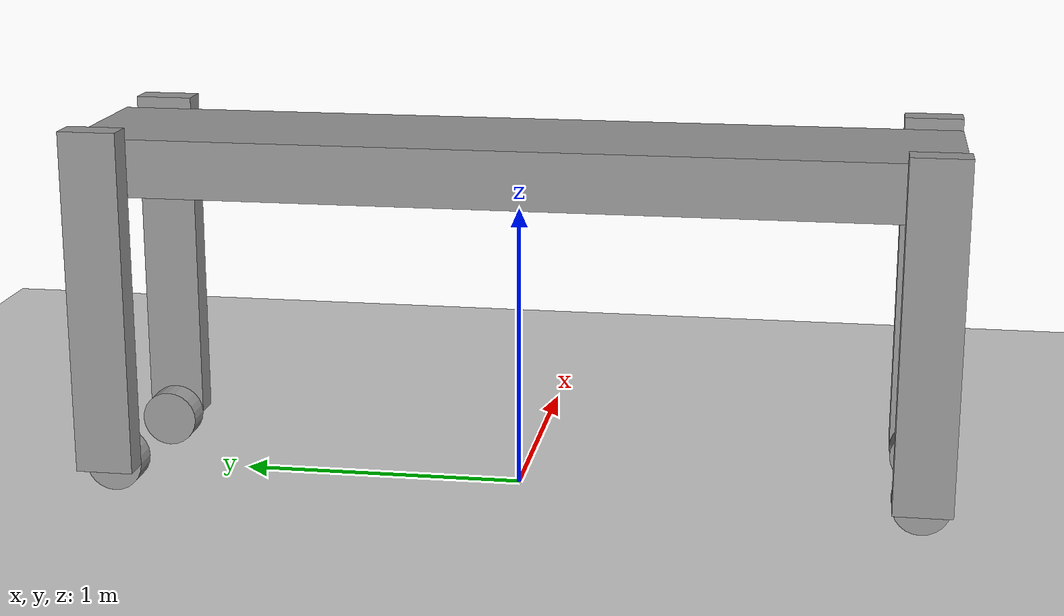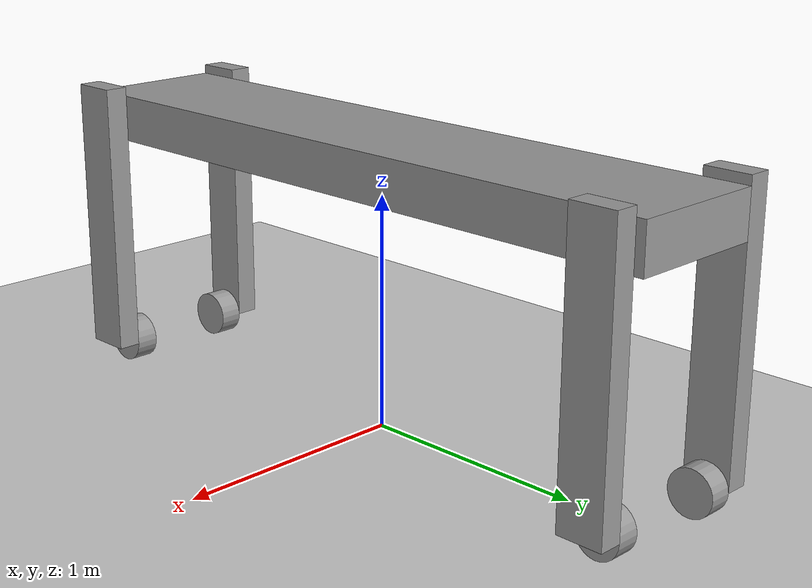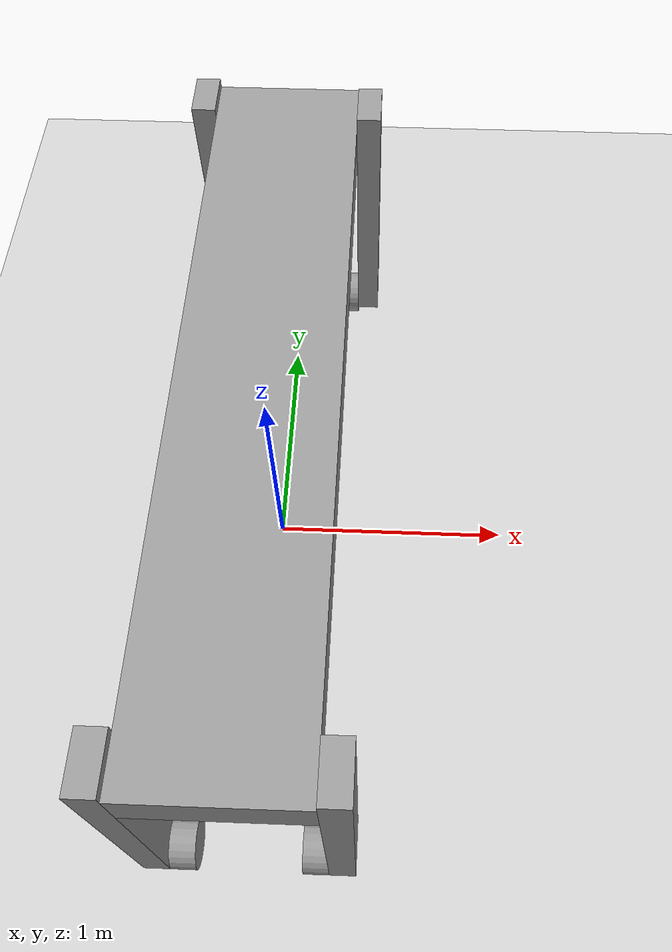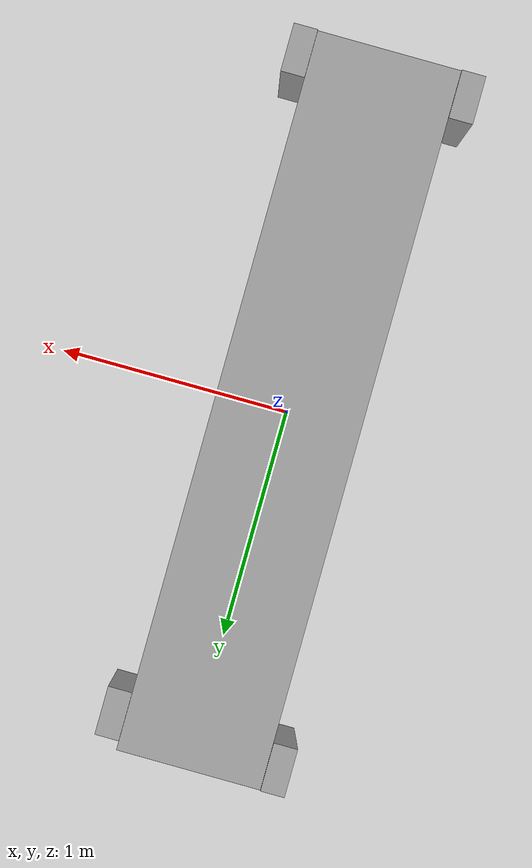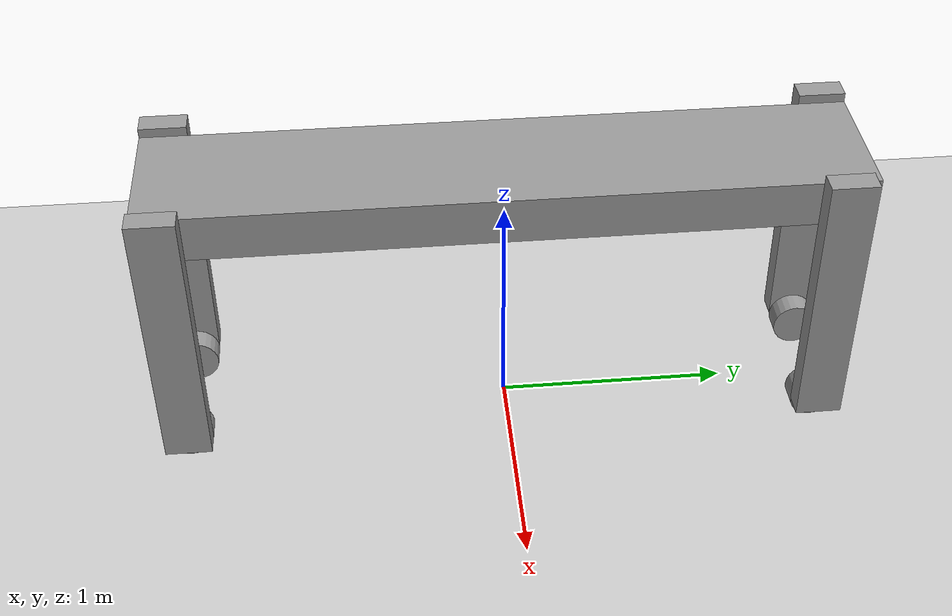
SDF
<sdf version="1.7">
 <world name="default">
  <model name="ground_plane">
   <static>1</static>
   <link name="link">
    <collision name="collision">
     <geometry><plane><normal>0 0 1</normal><size>100 100</size></plane></geometry>
     <surface>
      <contact><collide_bitmask>65535</collide_bitmask></contact>
      <friction><ode><mu>100</mu><mu2>50</mu2></ode></friction>
     </surface>
    </collision>
    <visual name="visual">
     <cast_shadows>0</cast_shadows>
     <geometry><plane><normal>0 0 1</normal><size>100 100</size></plane></geometry>
     <material>
      <script><uri>file://media/materials/scripts/gazebo.material</uri><name>Gazebo/Grey</name></script>
     </material>
    </visual>
   </link>
  </model>
  <model name="trolley_3m_long">
   <link name="link_0">
    <inertial>
     <mass>1</mass>
     <inertia>
      <ixx>0.166667</ixx>
      <ixy>0</ixy>
      <ixz>0</ixz>
      <iyy>0.166667</iyy>
      <iyz>0</iyz>
      <izz>0.166667</izz>
     </inertia>
    </inertial>
    <pose>0.010003 0.008889 0.52196 0 -0 0</pose>
    <visual name="visual">
     <geometry><box><size>0.6 3 0.2</size></box></geometry>
     <material>
      <lighting>1</lighting>
      <script><uri>file://media/materials/scripts/gazebo.material</uri><name>Gazebo/Grey</name></script>
      <shader type="pixel"><normal_map>__default__</normal_map></shader>
      <ambient>0.3 0.3 0.3 1</ambient>
      <diffuse>0.7 0.7 0.7 1</diffuse>
      <specular>0.01 0.01 0.01 1</specular>
      <emissive>0 0 0 1</emissive>
     </material>
    </visual>
    <collision name="collision">
     <geometry><box><size>0.6 3 0.2</size></box></geometry>
     <surface>
      <friction>
       <ode><mu>1</mu><mu2>1</mu2><fdir1>0 0 0</fdir1><slip1>0</slip1><slip2>0</slip2></ode>
       <torsional>
        <coefficient>1</coefficient>
        <patch_radius>0</patch_radius>
        <surface_radius>0</surface_radius>
        <use_patch_radius>1</use_patch_radius>
        <ode><slip>0</slip></ode>
       </torsional>
      </friction>
      <bounce><restitution_coefficient>0</restitution_coefficient><threshold>1e+06</threshold></bounce>
      <contact>
       <collide_without_contact>0</collide_without_contact>
       <collide_without_contact_bitmask>1</collide_without_contact_bitmask>
       <collide_bitmask>1</collide_bitmask>
       <ode>
        <soft_cfm>0</soft_cfm>
        <soft_erp>0.2</soft_erp>
        <kp>1e+13</kp>
        <kd>1</kd>
        <max_vel>0.01</max_vel>
        <min_depth>0</min_depth>
       </ode>
       <bullet>
        <split_impulse>1</split_impulse>
        <split_impulse_penetration_threshold>-0.01</split_impulse_penetration_threshold>
        <soft_cfm>0</soft_cfm>
        <soft_erp>0.2</soft_erp>
        <kp>1e+13</kp>
        <kd>1</kd>
       </bullet>
      </contact>
     </surface>
    </collision>
   </link>
   <link name="link_1">
    <inertial>
     <mass>1</mass>
     <inertia>
      <ixx>0.166667</ixx>
      <ixy>0</ixy>
      <ixz>0</ixz>
      <iyy>0.166667</iyy>
      <iyz>0</iyz>
      <izz>0.166667</izz>
     </inertia>
    </inertial>
    <pose>0.360003 1.36889 0.06196 0 -0 0</pose>
    <visual name="visual">
     <geometry><box><size>0.1 0.2 1.2</size></box></geometry>
     <material>
      <lighting>1</lighting>
      <script><uri>file://media/materials/scripts/gazebo.material</uri><name>Gazebo/Grey</name></script>
      <shader type="pixel"><normal_map>__default__</normal_map></shader>
      <ambient>0.3 0.3 0.3 1</ambient>
      <diffuse>0.7 0.7 0.7 1</diffuse>
      <specular>0.01 0.01 0.01 1</specular>
      <emissive>0 0 0 1</emissive>
     </material>
    </visual>
    <collision name="collision">
     <geometry><box><size>0.1 0.2 1.2</size></box></geometry>
     <surface>
      <friction>
       <ode><mu>1</mu><mu2>1</mu2><fdir1>0 0 0</fdir1><slip1>0</slip1><slip2>0</slip2></ode>
       <torsional>
        <coefficient>1</coefficient>
        <patch_radius>0</patch_radius>
        <surface_radius>0</surface_radius>
        <use_patch_radius>1</use_patch_radius>
        <ode><slip>0</slip></ode>
       </torsional>
      </friction>
      <bounce><restitution_coefficient>0</restitution_coefficient><threshold>1e+06</threshold></bounce>
      <contact>
       <collide_without_contact>0</collide_without_contact>
       <collide_without_contact_bitmask>1</collide_without_contact_bitmask>
       <collide_bitmask>1</collide_bitmask>
       <ode>
        <soft_cfm>0</soft_cfm>
        <soft_erp>0.2</soft_erp>
        <kp>1e+13</kp>
        <kd>1</kd>
        <max_vel>0.01</max_vel>
        <min_depth>0</min_depth>
       </ode>
       <bullet>
        <split_impulse>1</split_impulse>
        <split_impulse_penetration_threshold>-0.01</split_impulse_penetration_threshold>
        <soft_cfm>0</soft_cfm>
        <soft_erp>0.2</soft_erp>
        <kp>1e+13</kp>
        <kd>1</kd>
       </bullet>
      </contact>
     </surface>
    </collision>
   </link>
   <link name="link_1_clone">
    <inertial>
     <mass>1</mass>
     <inertia>
      <ixx>0.166667</ixx>
      <ixy>0</ixy>
      <ixz>0</ixz>
      <iyy>0.166667</iyy>
      <iyz>0</iyz>
      <izz>0.166667</izz>
     </inertia>
    </inertial>
    <pose>-0.339997 1.40889 0.06196 0 -0 0</pose>
    <visual name="visual">
     <geometry><box><size>0.1 0.2 1.2</size></box></geometry>
     <material>
      <lighting>1</lighting>
      <script><uri>file://media/materials/scripts/gazebo.material</uri><name>Gazebo/Grey</name></script>
      <shader type="pixel"><normal_map>__default__</normal_map></shader>
      <ambient>0.3 0.3 0.3 1</ambient>
      <diffuse>0.7 0.7 0.7 1</diffuse>
      <specular>0.01 0.01 0.01 1</specular>
      <emissive>0 0 0 1</emissive>
     </material>
    </visual>
    <collision name="collision">
     <geometry><box><size>0.1 0.2 1.2</size></box></geometry>
     <surface>
      <friction>
       <ode><mu>1</mu><mu2>1</mu2><fdir1>0 0 0</fdir1><slip1>0</slip1><slip2>0</slip2></ode>
       <torsional>
        <coefficient>1</coefficient>
        <patch_radius>0</patch_radius>
        <surface_radius>0</surface_radius>
        <use_patch_radius>1</use_patch_radius>
        <ode><slip>0</slip></ode>
       </torsional>
      </friction>
      <bounce><restitution_coefficient>0</restitution_coefficient><threshold>1e+06</threshold></bounce>
      <contact>
       <collide_without_contact>0</collide_without_contact>
       <collide_without_contact_bitmask>1</collide_without_contact_bitmask>
       <collide_bitmask>1</collide_bitmask>
       <ode>
        <soft_cfm>0</soft_cfm>
        <soft_erp>0.2</soft_erp>
        <kp>1e+13</kp>
        <kd>1</kd>
        <max_vel>0.01</max_vel>
        <min_depth>0</min_depth>
       </ode>
       <bullet>
        <split_impulse>1</split_impulse>
        <split_impulse_penetration_threshold>-0.01</split_impulse_penetration_threshold>
        <soft_cfm>0</soft_cfm>
        <soft_erp>0.2</soft_erp>
        <kp>1e+13</kp>
        <kd>1</kd>
       </bullet>
      </contact>
     </surface>
    </collision>
   </link>
   <link name="link_1_clone_0">
    <inertial>
     <mass>1</mass>
     <inertia>
      <ixx>0.166667</ixx>
      <ixy>0</ixy>
      <ixz>0</ixz>
      <iyy>0.166667</iyy>
      <iyz>0</iyz>
      <izz>0.166667</izz>
     </inertia>
    </inertial>
    <pose>0.360003 -1.39111 0.06196 0 -0 0</pose>
    <visual name="visual">
     <geometry><box><size>0.1 0.2 1.2</size></box></geometry>
     <material>
      <lighting>1</lighting>
      <script><uri>file://media/materials/scripts/gazebo.material</uri><name>Gazebo/Grey</name></script>
      <shader type="pixel"><normal_map>__default__</normal_map></shader>
      <ambient>0.3 0.3 0.3 1</ambient>
      <diffuse>0.7 0.7 0.7 1</diffuse>
      <specular>0.01 0.01 0.01 1</specular>
      <emissive>0 0 0 1</emissive>
     </material>
    </visual>
    <collision name="collision">
     <geometry><box><size>0.1 0.2 1.2</size></box></geometry>
     <surface>
      <friction>
       <ode><mu>1</mu><mu2>1</mu2><fdir1>0 0 0</fdir1><slip1>0</slip1><slip2>0</slip2></ode>
       <torsional>
        <coefficient>1</coefficient>
        <patch_radius>0</patch_radius>
        <surface_radius>0</surface_radius>
        <use_patch_radius>1</use_patch_radius>
        <ode><slip>0</slip></ode>
       </torsional>
      </friction>
      <bounce><restitution_coefficient>0</restitution_coefficient><threshold>1e+06</threshold></bounce>
      <contact>
       <collide_without_contact>0</collide_without_contact>
       <collide_without_contact_bitmask>1</collide_without_contact_bitmask>
       <collide_bitmask>1</collide_bitmask>
       <ode>
        <soft_cfm>0</soft_cfm>
        <soft_erp>0.2</soft_erp>
        <kp>1e+13</kp>
        <kd>1</kd>
        <max_vel>0.01</max_vel>
        <min_depth>0</min_depth>
       </ode>
       <bullet>
        <split_impulse>1</split_impulse>
        <split_impulse_penetration_threshold>-0.01</split_impulse_penetration_threshold>
        <soft_cfm>0</soft_cfm>
        <soft_erp>0.2</soft_erp>
        <kp>1e+13</kp>
        <kd>1</kd>
       </bullet>
      </contact>
     </surface>
    </collision>
   </link>
   <link name="link_1_clone_1">
    <inertial>
     <mass>1</mass>
     <inertia>
      <ixx>0.166667</ixx>
      <ixy>0</ixy>
      <ixz>0</ixz>
      <iyy>0.166667</iyy>
      <iyz>0</iyz>
      <izz>0.166667</izz>
     </inertia>
    </inertial>
    <pose>-0.339997 -1.39111 0.06196 0 -0 0</pose>
    <visual name="visual">
     <geometry><box><size>0.1 0.2 1.2</size></box></geometry>
     <material>
      <lighting>1</lighting>
      <script><uri>file://media/materials/scripts/gazebo.material</uri><name>Gazebo/Grey</name></script>
      <shader type="pixel"><normal_map>__default__</normal_map></shader>
      <ambient>0.3 0.3 0.3 1</ambient>
      <diffuse>0.7 0.7 0.7 1</diffuse>
      <specular>0.01 0.01 0.01 1</specular>
      <emissive>0 0 0 1</emissive>
     </material>
    </visual>
    <collision name="collision">
     <geometry><box><size>0.1 0.2 1.2</size></box></geometry>
     <surface>
      <friction>
       <ode><mu>1</mu><mu2>1</mu2><fdir1>0 0 0</fdir1><slip1>0</slip1><slip2>0</slip2></ode>
       <torsional>
        <coefficient>1</coefficient>
        <patch_radius>0</patch_radius>
        <surface_radius>0</surface_radius>
        <use_patch_radius>1</use_patch_radius>
        <ode><slip>0</slip></ode>
       </torsional>
      </friction>
      <bounce><restitution_coefficient>0</restitution_coefficient><threshold>1e+06</threshold></bounce>
      <contact>
       <collide_without_contact>0</collide_without_contact>
       <collide_without_contact_bitmask>1</collide_without_contact_bitmask>
       <collide_bitmask>1</collide_bitmask>
       <ode>
        <soft_cfm>0</soft_cfm>
        <soft_erp>0.2</soft_erp>
        <kp>1e+13</kp>
        <kd>1</kd>
        <max_vel>0.01</max_vel>
        <min_depth>0</min_depth>
       </ode>
       <bullet>
        <split_impulse>1</split_impulse>
        <split_impulse_penetration_threshold>-0.01</split_impulse_penetration_threshold>
        <soft_cfm>0</soft_cfm>
        <soft_erp>0.2</soft_erp>
        <kp>1e+13</kp>
        <kd>1</kd>
       </bullet>
      </contact>
     </surface>
    </collision>
   </link>
   <link name="link_2">
    <inertial>
     <mass>1</mass>
     <inertia><ixx>0.145833</ixx><ixy>0</ixy><ixz>0</ixz><iyy>0.145833</iyy><iyz>0</iyz><izz>0.125</izz></inertia>
    </inertial>
    <pose>0.260003 1.36889 -0.53804 0 1.57 0</pose>
    <visual name="visual">
     <geometry><cylinder><radius>0.1</radius><length>0.1</length></cylinder></geometry>
     <material>
      <lighting>1</lighting>
      <script><uri>file://media/materials/scripts/gazebo.material</uri><name>Gazebo/Grey</name></script>
      <shader type="pixel"><normal_map>__default__</normal_map></shader>
      <ambient>0.3 0.3 0.3 1</ambient>
      <diffuse>0.7 0.7 0.7 1</diffuse>
      <specular>0.01 0.01 0.01 1</specular>
      <emissive>0 0 0 1</emissive>
     </material>
    </visual>
    <collision name="collision">
     <geometry><cylinder><radius>0.1</radius><length>0.1</length></cylinder></geometry>
     <surface>
      <friction>
       <ode><mu>1</mu><mu2>1</mu2><fdir1>0 0 0</fdir1><slip1>0</slip1><slip2>0</slip2></ode>
       <torsional>
        <coefficient>1</coefficient>
        <patch_radius>0</patch_radius>
        <surface_radius>0</surface_radius>
        <use_patch_radius>1</use_patch_radius>
        <ode><slip>0</slip></ode>
       </torsional>
      </friction>
      <bounce><restitution_coefficient>0</restitution_coefficient><threshold>1e+06</threshold></bounce>
      <contact>
       <collide_without_contact>0</collide_without_contact>
       <collide_without_contact_bitmask>1</collide_without_contact_bitmask>
       <collide_bitmask>1</collide_bitmask>
       <ode>
        <soft_cfm>0</soft_cfm>
        <soft_erp>0.2</soft_erp>
        <kp>1e+13</kp>
        <kd>1</kd>
        <max_vel>0.01</max_vel>
        <min_depth>0</min_depth>
       </ode>
       <bullet>
        <split_impulse>1</split_impulse>
        <split_impulse_penetration_threshold>-0.01</split_impulse_penetration_threshold>
        <soft_cfm>0</soft_cfm>
        <soft_erp>0.2</soft_erp>
        <kp>1e+13</kp>
        <kd>1</kd>
       </bullet>
      </contact>
     </surface>
    </collision>
   </link>
   <link name="link_2_clone">
    <inertial>
     <mass>1</mass>
     <inertia><ixx>0.145833</ixx><ixy>0</ixy><ixz>0</ixz><iyy>0.145833</iyy><iyz>0</iyz><izz>0.125</izz></inertia>
    </inertial>
    <pose>-0.239917 1.40889 -0.53804 0 1.57 0</pose>
    <visual name="visual">
     <geometry><cylinder><radius>0.1</radius><length>0.1</length></cylinder></geometry>
     <material>
      <lighting>1</lighting>
      <script><uri>file://media/materials/scripts/gazebo.material</uri><name>Gazebo/Grey</name></script>
      <shader type="pixel"><normal_map>__default__</normal_map></shader>
      <ambient>0.3 0.3 0.3 1</ambient>
      <diffuse>0.7 0.7 0.7 1</diffuse>
      <specular>0.01 0.01 0.01 1</specular>
      <emissive>0 0 0 1</emissive>
     </material>
    </visual>
    <collision name="collision">
     <geometry><cylinder><radius>0.1</radius><length>0.1</length></cylinder></geometry>
     <surface>
      <friction>
       <ode><mu>1</mu><mu2>1</mu2><fdir1>0 0 0</fdir1><slip1>0</slip1><slip2>0</slip2></ode>
       <torsional>
        <coefficient>1</coefficient>
        <patch_radius>0</patch_radius>
        <surface_radius>0</surface_radius>
        <use_patch_radius>1</use_patch_radius>
        <ode><slip>0</slip></ode>
       </torsional>
      </friction>
      <bounce><restitution_coefficient>0</restitution_coefficient><threshold>1e+06</threshold></bounce>
      <contact>
       <collide_without_contact>0</collide_without_contact>
       <collide_without_contact_bitmask>1</collide_without_contact_bitmask>
       <collide_bitmask>1</collide_bitmask>
       <ode>
        <soft_cfm>0</soft_cfm>
        <soft_erp>0.2</soft_erp>
        <kp>1e+13</kp>
        <kd>1</kd>
        <max_vel>0.01</max_vel>
        <min_depth>0</min_depth>
       </ode>
       <bullet>
        <split_impulse>1</split_impulse>
        <split_impulse_penetration_threshold>-0.01</split_impulse_penetration_threshold>
        <soft_cfm>0</soft_cfm>
        <soft_erp>0.2</soft_erp>
        <kp>1e+13</kp>
        <kd>1</kd>
       </bullet>
      </contact>
     </surface>
    </collision>
   </link>
   <link name="link_2_clone_0">
    <inertial>
     <mass>1</mass>
     <inertia><ixx>0.145833</ixx><ixy>0</ixy><ixz>0</ixz><iyy>0.145833</iyy><iyz>0</iyz><izz>0.125</izz></inertia>
    </inertial>
    <pose>0.259923 -1.39111 -0.53804 0 1.57 0</pose>
    <visual name="visual">
     <geometry><cylinder><radius>0.1</radius><length>0.1</length></cylinder></geometry>
     <material>
      <lighting>1</lighting>
      <script><uri>file://media/materials/scripts/gazebo.material</uri><name>Gazebo/Grey</name></script>
      <shader type="pixel"><normal_map>__default__</normal_map></shader>
      <ambient>0.3 0.3 0.3 1</ambient>
      <diffuse>0.7 0.7 0.7 1</diffuse>
      <specular>0.01 0.01 0.01 1</specular>
      <emissive>0 0 0 1</emissive>
     </material>
    </visual>
    <collision name="collision">
     <geometry><cylinder><radius>0.1</radius><length>0.1</length></cylinder></geometry>
     <surface>
      <friction>
       <ode><mu>1</mu><mu2>1</mu2><fdir1>0 0 0</fdir1><slip1>0</slip1><slip2>0</slip2></ode>
       <torsional>
        <coefficient>1</coefficient>
        <patch_radius>0</patch_radius>
        <surface_radius>0</surface_radius>
        <use_patch_radius>1</use_patch_radius>
        <ode><slip>0</slip></ode>
       </torsional>
      </friction>
      <bounce><restitution_coefficient>0</restitution_coefficient><threshold>1e+06</threshold></bounce>
      <contact>
       <collide_without_contact>0</collide_without_contact>
       <collide_without_contact_bitmask>1</collide_without_contact_bitmask>
       <collide_bitmask>1</collide_bitmask>
       <ode>
        <soft_cfm>0</soft_cfm>
        <soft_erp>0.2</soft_erp>
        <kp>1e+13</kp>
        <kd>1</kd>
        <max_vel>0.01</max_vel>
        <min_depth>0</min_depth>
       </ode>
       <bullet>
        <split_impulse>1</split_impulse>
        <split_impulse_penetration_threshold>-0.01</split_impulse_penetration_threshold>
        <soft_cfm>0</soft_cfm>
        <soft_erp>0.2</soft_erp>
        <kp>1e+13</kp>
        <kd>1</kd>
       </bullet>
      </contact>
     </surface>
    </collision>
   </link>
   <link name="link_2_clone_1">
    <inertial>
     <mass>1</mass>
     <inertia><ixx>0.145833</ixx><ixy>0</ixy><ixz>0</ixz><iyy>0.145833</iyy><iyz>0</iyz><izz>0.125</izz></inertia>
    </inertial>
    <pose>-0.239917 -1.39111 -0.53804 0 1.57 0</pose>
    <visual name="visual">
     <geometry><cylinder><radius>0.1</radius><length>0.1</length></cylinder></geometry>
     <material>
      <lighting>1</lighting>
      <script><uri>file://media/materials/scripts/gazebo.material</uri><name>Gazebo/Grey</name></script>
      <shader type="pixel"><normal_map>__default__</normal_map></shader>
      <ambient>0.3 0.3 0.3 1</ambient>
      <diffuse>0.7 0.7 0.7 1</diffuse>
      <specular>0.01 0.01 0.01 1</specular>
      <emissive>0 0 0 1</emissive>
     </material>
    </visual>
    <collision name="collision">
     <geometry><cylinder><radius>0.1</radius><length>0.1</length></cylinder></geometry>
     <surface>
      <friction>
       <ode><mu>1</mu><mu2>1</mu2><fdir1>0 0 0</fdir1><slip1>0</slip1><slip2>0</slip2></ode>
       <torsional>
        <coefficient>1</coefficient>
        <patch_radius>0</patch_radius>
        <surface_radius>0</surface_radius>
        <use_patch_radius>1</use_patch_radius>
        <ode><slip>0</slip></ode>
       </torsional>
      </friction>
      <bounce><restitution_coefficient>0</restitution_coefficient><threshold>1e+06</threshold></bounce>
      <contact>
       <collide_without_contact>0</collide_without_contact>
       <collide_without_contact_bitmask>1</collide_without_contact_bitmask>
       <collide_bitmask>1</collide_bitmask>
       <ode>
        <soft_cfm>0</soft_cfm>
        <soft_erp>0.2</soft_erp>
        <kp>1e+13</kp>
        <kd>1</kd>
        <max_vel>0.01</max_vel>
        <min_depth>0</min_depth>
       </ode>
       <bullet>
        <split_impulse>1</split_impulse>
        <split_impulse_penetration_threshold>-0.01</split_impulse_penetration_threshold>
        <soft_cfm>0</soft_cfm>
        <soft_erp>0.2</soft_erp>
        <kp>1e+13</kp>
        <kd>1</kd>
       </bullet>
      </contact>
     </surface>
    </collision>
   </link>
   <joint name="link_0_JOINT_0" type="fixed">
    <parent>link_0</parent>
    <child>link_1</child>
    <physics>
     <ode><limit><cfm>0</cfm><erp>0.2</erp></limit><suspension><cfm>0</cfm><erp>0.2</erp></suspension></ode>
    </physics>
   </joint>
   <joint name="link_0_JOINT_1" type="fixed">
    <parent>link_0</parent>
    <child>link_1_clone</child>
    <physics>
     <ode><limit><cfm>0</cfm><erp>0.2</erp></limit><suspension><cfm>0</cfm><erp>0.2</erp></suspension></ode>
    </physics>
   </joint>
   <joint name="link_0_JOINT_2" type="fixed">
    <parent>link_0</parent>
    <child>link_1_clone_0</child>
    <physics>
     <ode><limit><cfm>0</cfm><erp>0.2</erp></limit><suspension><cfm>0</cfm><erp>0.2</erp></suspension></ode>
    </physics>
   </joint>
   <joint name="link_0_JOINT_3" type="fixed">
    <parent>link_0</parent>
    <child>link_1_clone_1</child>
    <physics>
     <ode><limit><cfm>0</cfm><erp>0.2</erp></limit><suspension><cfm>0</cfm><erp>0.2</erp></suspension></ode>
    </physics>
   </joint>
   <joint name="link_1_JOINT_4" type="revolute">
    <parent>link_1</parent>
    <child>link_2</child>
    <axis>
     <xyz>0 0 1</xyz>
     <limit>
      <lower>-1.79769e+308</lower>
      <upper>1.79769e+308</upper>
      <effort>-1</effort>
      <velocity>-1</velocity>
     </limit>
     <dynamics>
      <spring_reference>0</spring_reference>
      <spring_stiffness>0</spring_stiffness>
      <damping>0</damping>
     </dynamics>
    </axis>
    <physics>
     <ode><limit><cfm>0</cfm><erp>0.2</erp></limit><suspension><cfm>0</cfm><erp>0.2</erp></suspension></ode>
    </physics>
   </joint>
   <joint name="link_1_clone_0_JOINT_6" type="revolute">
    <parent>link_1_clone_0</parent>
    <child>link_2_clone_0</child>
    <axis>
     <xyz>0 0 1</xyz>
     <limit>
      <lower>-1.79769e+308</lower>
      <upper>1.79769e+308</upper>
      <effort>-1</effort>
      <velocity>-1</velocity>
     </limit>
     <dynamics>
      <spring_reference>0</spring_reference>
      <spring_stiffness>0</spring_stiffness>
      <damping>0</damping>
     </dynamics>
    </axis>
    <physics>
     <ode><limit><cfm>0</cfm><erp>0.2</erp></limit><suspension><cfm>0</cfm><erp>0.2</erp></suspension></ode>
    </physics>
   </joint>
   <joint name="link_1_clone_1_JOINT_7" type="revolute">
    <parent>link_1_clone_1</parent>
    <child>link_2_clone_1</child>
    <axis>
     <xyz>0 0 1</xyz>
     <limit>
      <lower>-1.79769e+308</lower>
      <upper>1.79769e+308</upper>
      <effort>-1</effort>
      <velocity>-1</velocity>
     </limit>
     <dynamics>
      <spring_reference>0</spring_reference>
      <spring_stiffness>0</spring_stiffness>
      <damping>0</damping>
     </dynamics>
    </axis>
    <physics>
     <ode><limit><cfm>0</cfm><erp>0.2</erp></limit><suspension><cfm>0</cfm><erp>0.2</erp></suspension></ode>
    </physics>
   </joint>
   <joint name="link_1_clone_JOINT_5" type="revolute">
    <parent>link_1_clone</parent>
    <child>link_2_clone</child>
    <axis>
     <xyz>0 0 1</xyz>
     <limit>
      <lower>-1.79769e+308</lower>
      <upper>1.79769e+308</upper>
      <effort>-1</effort>
      <velocity>-1</velocity>
     </limit>
     <dynamics>
      <spring_reference>0</spring_reference>
      <spring_stiffness>0</spring_stiffness>
      <damping>0</damping>
     </dynamics>
    </axis>
    <physics>
     <ode><limit><cfm>0</cfm><erp>0.2</erp></limit><suspension><cfm>0</cfm><erp>0.2</erp></suspension></ode>
    </physics>
   </joint>
   <static>0</static>
   <pose>-0.009702 -0.00886 0.638079 1e-06 1.3e-05 -3.9e-05</pose>
  </model>
 </world>
</sdf>
